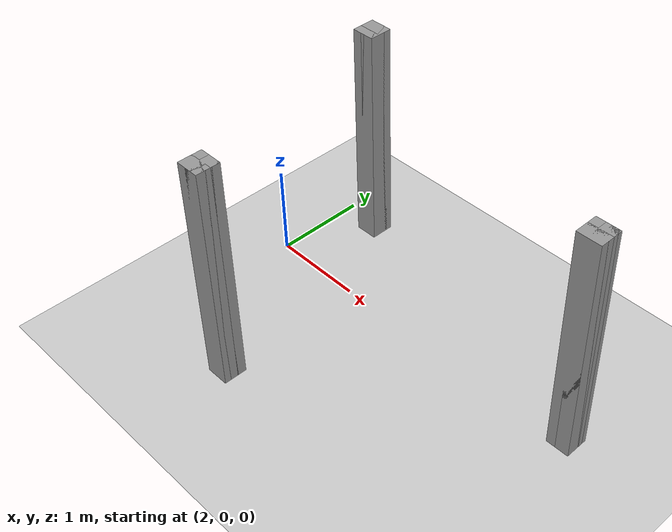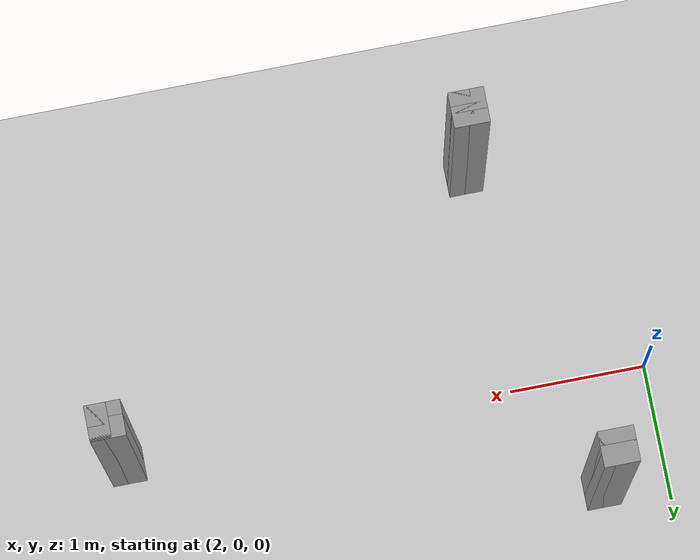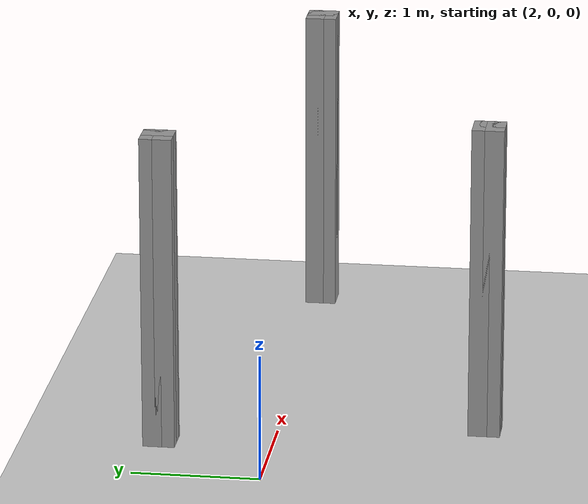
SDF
<sdf version="1.6">
 <world name="default">
  <light name="sun" type="directional">
   <pose>0 0 10 0 -0 0</pose>
   <diffuse>0.8 0.8 0.8 1</diffuse>
   <specular>0.2 0.2 0.2 1</specular>
   <attenuation>
    <range>1000</range>
    <constant>0.9</constant>
    <linear>0.01</linear>
    <quadratic>0.001</quadratic>
   </attenuation>
   <direction>-0.5 0.1 -0.9</direction>
  </light>
  <model name="ground_plane">
   <static>1</static>
   <link name="link">
    <collision name="collision">
     <geometry><plane><normal>0 0 1</normal><size>100 100</size></plane></geometry>
     <surface>
      <contact><collide_bitmask>65535</collide_bitmask></contact>
      <friction><ode><mu>100</mu><mu2>50</mu2></ode></friction>
     </surface>
    </collision>
    <visual name="visual">
     <cast_shadows>0</cast_shadows>
     <geometry><plane><normal>0 0 1</normal><size>100 100</size></plane></geometry>
     <material>
      <script><uri>file://media/materials/scripts/gazebo.material</uri><name>Gazebo/Grey</name></script>
     </material>
    </visual>
   </link>
  </model>
  <gravity>0 0 -9.8</gravity>
  <magnetic_field>6e-06 2.3e-05 -4.2e-05</magnetic_field>
  <atmosphere type="adiabatic"/>
  <physics name="default_physics" default="0" type="ode">
   <max_step_size>0.001</max_step_size>
   <real_time_factor>1</real_time_factor>
   <real_time_update_rate>1000</real_time_update_rate>
  </physics>
  <scene><ambient>0.4 0.4 0.4 1</ambient><background>0.7 0.7 0.7 1</background><shadows>1</shadows></scene>
  <audio><device>default</device></audio>
  <spherical_coordinates>
   <surface_model>EARTH_WGS84</surface_model>
   <latitude_deg>0</latitude_deg>
   <longitude_deg>0</longitude_deg>
   <elevation>0</elevation>
   <heading_deg>0</heading_deg>
  </spherical_coordinates>
  <model name="human01">
   <pose>3.03287 -1.62853 0.071041 0 -0 0</pose>
   <link name="Wall_0">
    <collision name="Wall_0_Collision">
     <geometry><box><size>0.25 0.15 2.5</size></box></geometry>
     <pose>0 0 1.25 0 -0 0</pose>
    </collision>
    <visual name="Wall_0_Visual">
     <pose>0 0 1.25 0 -0 0</pose>
     <geometry><box><size>0.25 0.15 2.5</size></box></geometry>
     <material>
      <script><uri>file://media/materials/scripts/gazebo.material</uri><name>Gazebo/Grey</name></script>
      <ambient>1 1 1 1</ambient>
     </material>
     <meta><layer>0</layer></meta>
    </visual>
    <pose>0 -0.05 0 0 -0 0</pose>
   </link>
   <link name="Wall_1">
    <collision name="Wall_1_Collision">
     <geometry><box><size>0.25 0.15 2.5</size></box></geometry>
     <pose>0 0 1.25 0 -0 0</pose>
    </collision>
    <visual name="Wall_1_Visual">
     <pose>0 0 1.25 0 -0 0</pose>
     <geometry><box><size>0.25 0.15 2.5</size></box></geometry>
     <material>
      <script><uri>file://media/materials/scripts/gazebo.material</uri><name>Gazebo/Grey</name></script>
      <ambient>1 1 1 1</ambient>
     </material>
     <meta><layer>0</layer></meta>
    </visual>
    <pose>0.05 0 0 0 -0 1.5708</pose>
   </link>
   <link name="Wall_2">
    <collision name="Wall_2_Collision">
     <geometry><box><size>0.25 0.15 2.5</size></box></geometry>
     <pose>0 0 1.25 0 -0 0</pose>
    </collision>
    <visual name="Wall_2_Visual">
     <pose>0 0 1.25 0 -0 0</pose>
     <geometry><box><size>0.25 0.15 2.5</size></box></geometry>
     <material>
      <script><uri>file://media/materials/scripts/gazebo.material</uri><name>Gazebo/Grey</name></script>
      <ambient>1 1 1 1</ambient>
     </material>
     <meta><layer>0</layer></meta>
    </visual>
    <pose>0 0.05 0 0 -0 3.14159</pose>
   </link>
   <static>1</static>
  </model>
  <model name="human01_clone">
   <pose>2.49681 0.846878 0.071041 0 -0 0</pose>
   <link name="Wall_0">
    <collision name="Wall_0_Collision">
     <geometry><box><size>0.25 0.15 2.5</size></box></geometry>
     <pose>0 0 1.25 0 -0 0</pose>
    </collision>
    <visual name="Wall_0_Visual">
     <pose>0 0 1.25 0 -0 0</pose>
     <geometry><box><size>0.25 0.15 2.5</size></box></geometry>
     <material>
      <script><uri>file://media/materials/scripts/gazebo.material</uri><name>Gazebo/Grey</name></script>
      <ambient>1 1 1 1</ambient>
     </material>
     <meta><layer>0</layer></meta>
    </visual>
    <pose>0 -0.05 0 0 -0 0</pose>
   </link>
   <link name="Wall_1">
    <collision name="Wall_1_Collision">
     <geometry><box><size>0.25 0.15 2.5</size></box></geometry>
     <pose>0 0 1.25 0 -0 0</pose>
    </collision>
    <visual name="Wall_1_Visual">
     <pose>0 0 1.25 0 -0 0</pose>
     <geometry><box><size>0.25 0.15 2.5</size></box></geometry>
     <material>
      <script><uri>file://media/materials/scripts/gazebo.material</uri><name>Gazebo/Grey</name></script>
      <ambient>1 1 1 1</ambient>
     </material>
     <meta><layer>0</layer></meta>
    </visual>
    <pose>0.05 0 0 0 -0 1.5708</pose>
   </link>
   <link name="Wall_2">
    <collision name="Wall_2_Collision">
     <geometry><box><size>0.25 0.15 2.5</size></box></geometry>
     <pose>0 0 1.25 0 -0 0</pose>
    </collision>
    <visual name="Wall_2_Visual">
     <pose>0 0 1.25 0 -0 0</pose>
     <geometry><box><size>0.25 0.15 2.5</size></box></geometry>
     <material>
      <script><uri>file://media/materials/scripts/gazebo.material</uri><name>Gazebo/Grey</name></script>
      <ambient>1 1 1 1</ambient>
     </material>
     <meta><layer>0</layer></meta>
    </visual>
    <pose>0 0.05 0 0 -0 3.14159</pose>
   </link>
   <static>1</static>
  </model>
  <model name="human01_clone_0">
   <pose>5.85584 0.012335 0.071041 0 -0 0</pose>
   <link name="Wall_0">
    <collision name="Wall_0_Collision">
     <geometry><box><size>0.25 0.15 2.5</size></box></geometry>
     <pose>0 0 1.25 0 -0 0</pose>
    </collision>
    <visual name="Wall_0_Visual">
     <pose>0 0 1.25 0 -0 0</pose>
     <geometry><box><size>0.25 0.15 2.5</size></box></geometry>
     <material>
      <script><uri>file://media/materials/scripts/gazebo.material</uri><name>Gazebo/Grey</name></script>
      <ambient>1 1 1 1</ambient>
     </material>
     <meta><layer>0</layer></meta>
    </visual>
    <pose>0 -0.05 0 0 -0 0</pose>
   </link>
   <link name="Wall_1">
    <collision name="Wall_1_Collision">
     <geometry><box><size>0.25 0.15 2.5</size></box></geometry>
     <pose>0 0 1.25 0 -0 0</pose>
    </collision>
    <visual name="Wall_1_Visual">
     <pose>0 0 1.25 0 -0 0</pose>
     <geometry><box><size>0.25 0.15 2.5</size></box></geometry>
     <material>
      <script><uri>file://media/materials/scripts/gazebo.material</uri><name>Gazebo/Grey</name></script>
      <ambient>1 1 1 1</ambient>
     </material>
     <meta><layer>0</layer></meta>
    </visual>
    <pose>0.05 0 0 0 -0 1.5708</pose>
   </link>
   <link name="Wall_2">
    <collision name="Wall_2_Collision">
     <geometry><box><size>0.25 0.15 2.5</size></box></geometry>
     <pose>0 0 1.25 0 -0 0</pose>
    </collision>
    <visual name="Wall_2_Visual">
     <pose>0 0 1.25 0 -0 0</pose>
     <geometry><box><size>0.25 0.15 2.5</size></box></geometry>
     <material>
      <script><uri>file://media/materials/scripts/gazebo.material</uri><name>Gazebo/Grey</name></script>
      <ambient>1 1 1 1</ambient>
     </material>
     <meta><layer>0</layer></meta>
    </visual>
    <pose>0 0.05 0 0 -0 3.14159</pose>
   </link>
   <static>1</static>
  </model>
 </world>
</sdf>
